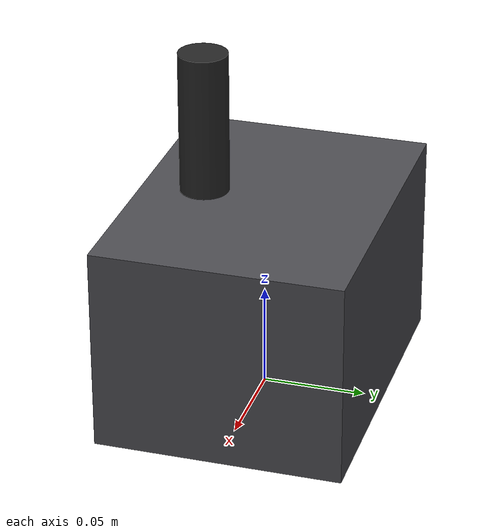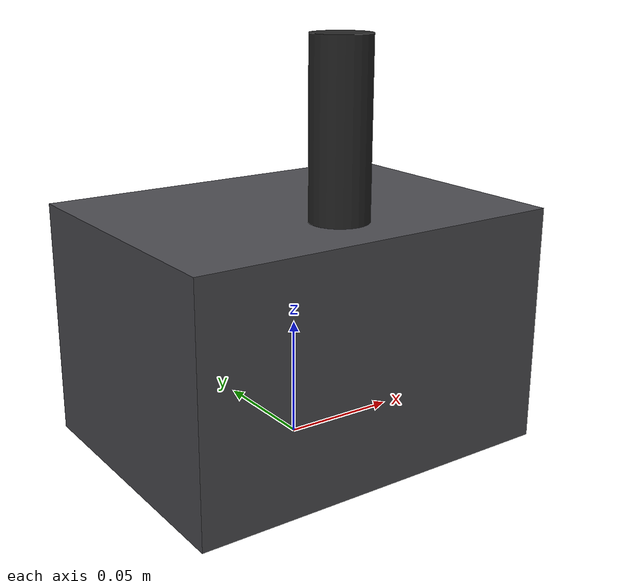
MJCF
<?xml version="1.0" encoding="utf-8"?>
<mujoco model="trace_evidence_vacuum">
  <compiler angle="radian" autolimits="true"/>
  <default>
    <default class="body"><geom contype="1" conaffinity="1"/></default>
  </default>
  <worldbody>
    <body name="base">
      <geom type="box" size="0.08 0.06 0.05" pos="0 0 0.05" rgba="0.3 0.3 0.32 1" class="body"/>
      <body name="nozzle_arm" pos="0 -0.03 0.13">
        <joint name="nozzle_arm_joint" type="slide" axis="1 0 0" range="-0.06 0" damping="1.0" frictionloss="0.3"/>
  <geom type="cylinder" size="0.012 0.04" pos="0 0 0" rgba="0.15 0.15 0.15 1" class="body"/>
      </body>
    </body>
  </worldbody>
</mujoco>
